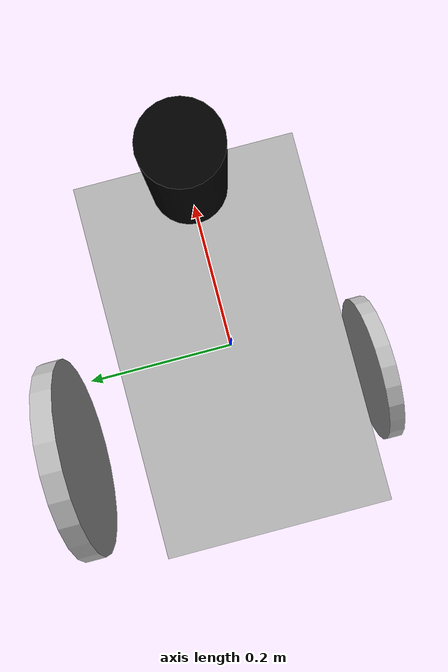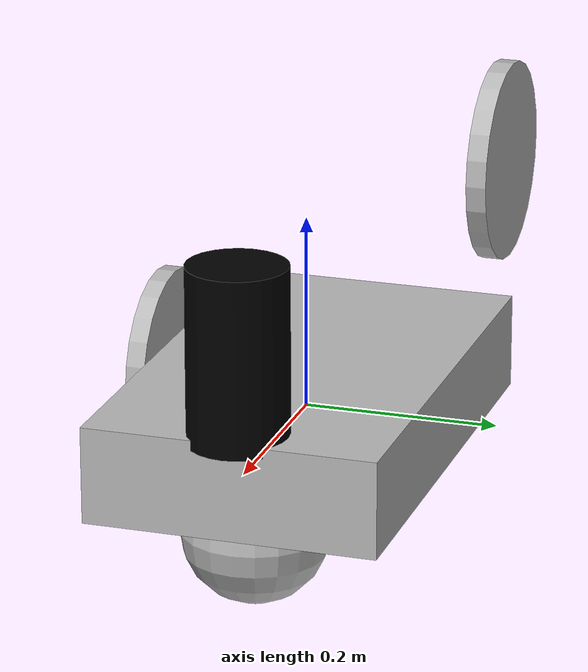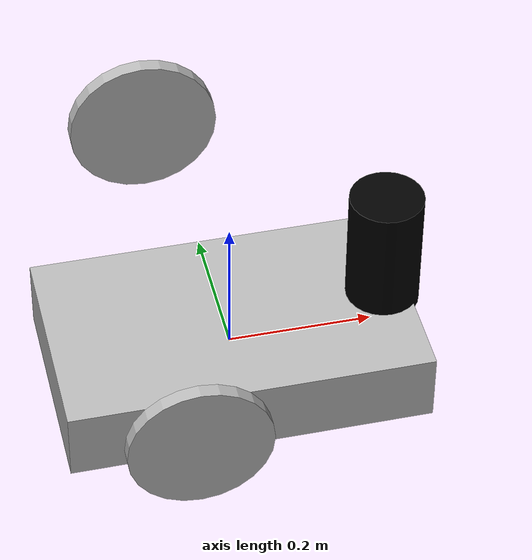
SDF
<?xml version='1.0'?>
<sdf version='1.4'>
  <model name="polybot">
  <static>false</static>

  <!-- *********************** MAIN BODY **************************  -->

  <link name='base_link'>
    <pose>0 0 0.0 0 0 0</pose>
    <collision name='base_link_collision'>
      <geometry>
        <box>
          <size>0.5 0.3 0.1</size>
        </box>
      </geometry>
    </collision>

    <visual name='base_link_visual'>
      <geometry>
        <box>
          <size>0.5 0.3 0.1</size>
        </box>
      </geometry>
    </visual>

    <!-- *********************** CASTER WHEEL **************************  -->

    <collision name='caster_collision'>
      <pose>0.165 0 -0.07 0 0 0</pose>
        <geometry>
          <sphere>
            <radius>0.075</radius>
          </sphere>
        </geometry>

        <surface>
          <friction>
            <ode>
              <mu>0</mu>
              <mu2>0</mu2>
              <slip1>1.0</slip1>
              <slip2>1.0</slip2>
            </ode>
          </friction>
        </surface>
      </collision>

      <visual name='caster_visual'>
        <pose>0.165 0 -0.07 0 0 0</pose>
        <geometry>
          <sphere>
            <radius>0.075</radius>
          </sphere>
        </geometry>
      </visual>

  </link>

  <!-- *********************** WHEEL LEFT **************************  -->

  <link name='wheel_left'>
    <pose>-0.08 -0.18 0 0 1.5707 1.5707</pose>
    <collision name='collision'>
      <geometry>
        <cylinder>
          <radius>0.1</radius>
          <length>0.02</length>
        </cylinder>
      </geometry>
    </collision>

    <visual name='visual'>
      <geometry>
        <cylinder>
          <radius>0.1</radius>
          <length>0.02</length>
        </cylinder>
      </geometry>
    </visual>
  </link>

  <!-- *********************** WHEEL RIGHT **************************  -->

  <link name='wheel_right'>
    <pose>-0.08 0.18 0.255 0 1.5707 1.5707</pose>
    <collision name='collision'>
      <geometry>
        <cylinder>
          <radius>0.1</radius>
          <length>0.02</length>
        </cylinder>
      </geometry>
    </collision>

    <visual name='visual'>
      <geometry>
        <cylinder>
          <radius>0.1</radius>
          <length>0.02</length>
        </cylinder>
      </geometry>
    </visual>
  </link>

  <!-- *********************** JOINT LEFT **************************  -->

  <joint type="revolute" name="left_wheel_hinge">
    <pose>0 0 0 0 0 0</pose>
    <child>wheel_left</child>
    <parent>base_link</parent>
    <axis>
      <xyz>0 1 0</xyz>
    </axis>
  </joint>

  <!-- *********************** JOINT RIGHT **************************  -->

  <joint type='revolute' name='right_wheel_hinge'>
    <pose>0 0 0 0 0 0</pose>
    <child>wheel_right</child>
    <parent>base_link</parent>
    <axis>
      <xyz>0 1 0</xyz>
    </axis>
  </joint>

  <!-- *********************** IMU SENSOR SETUP **************************  -->

  <link name="imu_link">
    <gravity>true</gravity>
    <sensor name="bmb_imu" type="imu">
      <always_on>true</always_on>
      <update_rate>100</update_rate>
      <visualize>true</visualize>
      <imu>
        <orientation>
          <x>
            <noise type="gaussian">
              <mean>0.0</mean>
              <stddev>2e-3</stddev>
            </noise>
          </x>
          <y>
            <noise type="gaussian">
              <mean>0.0</mean>
              <stddev>2e-3</stddev>
            </noise>
          </y>
          <z>
            <noise type="gaussian">
              <mean>0.0</mean>
              <stddev>2e-3</stddev>
            </noise>
          </z>
        </orientation>
        <angular_velocity>
          <x>
            <noise type="gaussian">
              <mean>0.0</mean>
              <stddev>2e-4</stddev>
            </noise>
          </x>
          <y>
            <noise type="gaussian">
              <mean>0.0</mean>
              <stddev>2e-4</stddev>
            </noise>
          </y>
          <z>
            <noise type="gaussian">
              <mean>0.0</mean>
              <stddev>2e-4</stddev>
            </noise>
          </z>
        </angular_velocity>
        <linear_acceleration>
          <x>
            <noise type="gaussian">
              <mean>0.0</mean>
              <stddev>1.7e-2</stddev>
            </noise>
          </x>
          <y>
            <noise type="gaussian">
              <mean>0.0</mean>
              <stddev>1.7e-2</stddev>
            </noise>
          </y>
          <z>
            <noise type="gaussian">
              <mean>0.0</mean>
              <stddev>1.7e-2</stddev>
            </noise>
          </z>
        </linear_acceleration>
      </imu>
      <plugin name="polybot_imu" filename="libgazebo_ros_imu_sensor.so">
        <initial_orientation_as_reference>false</initial_orientation_as_reference>
        <frame_name>imu_link</frame_name>
        <ros>
          <namespace>/imu</namespace>
          <remapping>~/out:=data</remapping>
        </ros>
      </plugin>
    </sensor>
  </link>

  <!-- *********************** GPS SETUP *********************************  -->

  <link name="gps_link">
    <sensor name="bmb_gps" type="gps">
      <always_on>true</always_on>
      <update_rate>10.0</update_rate>
      <gps>
        <position_sensing>
          <horizontal>
            <noise type="gaussian">
              <mean>0.0</mean>
              <stddev>1e-2</stddev>
            </noise>
          </horizontal>
          <vertical>
            <noise type="gaussian">
              <mean>0.0</mean>
              <stddev>1</stddev>
            </noise>
          </vertical>
        </position_sensing>
      </gps>
      <plugin name="polybot_gps" filename="libgazebo_ros_gps_sensor.so">
        <ros>
          <remapping>~/out:=gps/fix</remapping>
        </ros>
      </plugin>
    </sensor>
  </link>

  <!-- *********************** LIDAR SETUP *********************************  -->

  <link name="lidar_link">
  <inertial>
    <pose>0.215 0 0.13 0 0 0</pose>
    <inertia>
      <ixx>0.001</ixx>
      <ixy>0.000</ixy>
      <ixz>0.000</ixz>
      <iyy>0.001</iyy>
      <iyz>0.000</iyz>
      <izz>0.001</izz>
    </inertia>
    <mass>0.114</mass>
  </inertial>

  <collision name="lidar_collision">
    <pose>0.215 0 0.13 0 0 0</pose>
    <geometry>
      <cylinder>
        <radius>0.0508</radius>
        <length>0.18</length>
      </cylinder>
    </geometry>
  </collision>

  <visual name="lidar_visual">
    <pose>0.215 0 0.13 0 0 0</pose>
    <geometry>
      <cylinder>
        <radius>0.0508</radius>
        <length>0.18</length>
      </cylinder>
    </geometry>
    <material>
      <ambient>0.0 0.0 0.0 1.0</ambient>
      <diffuse>0.0 0.0 0.0 1.0</diffuse>
      <specular>0.0 0.0 0.0 1.0</specular>
      <emissive>0.0 0.0 0.0 1.0</emissive>
    </material>
  </visual>

  <sensor name="lidar" type="ray">
    <pose>0.215 0 0.215 0 0 0</pose>
    <always_on>true</always_on>
    <visualize>true</visualize>
    <update_rate>5</update_rate>
    <ray>
      <scan>
        <horizontal>
          <samples>360</samples>
          <resolution>1.00000</resolution>
          <min_angle>0.000000</min_angle>
          <max_angle>6.280000</max_angle>
        </horizontal>
      </scan>
      <range>
        <min>0.120000</min>
        <max>3.5</max>
        <resolution>0.015000</resolution>
      </range>
      <noise>
        <type>gaussian</type>
        <mean>0.0</mean>
        <stddev>0.01</stddev>
      </noise>
    </ray>
    <plugin name="scan" filename="libgazebo_ros_ray_sensor.so">
      <ros>
        <remapping>~/out:=scan</remapping>
      </ros>
      <output_type>sensor_msgs/LaserScan</output_type>
      <frame_name>lidar_link</frame_name>
    </plugin>
  </sensor>
  </link>

  <!-- *********************** WHEEL ODOMETRY ***************************    -->

  <plugin name="polybot_diff_drive" filename="libgazebo_ros_diff_drive.so">

    <update_rate>30</update_rate>

    <!-- wheels -->
    <left_joint>left_wheel_hinge</left_joint>
    <right_joint>right_wheel_hinge</right_joint>

    <!-- kinematics -->
    <wheel_separation>0.52</wheel_separation>
    <wheel_diameter>0.28</wheel_diameter>

    <!-- limits -->
    <max_wheel_torque>20</max_wheel_torque>
    <max_wheel_acceleration>1.0</max_wheel_acceleration>

    <!-- Receive velocity commands on this ROS topic -->
    <command_topic>cmd_vel</command_topic>

    <!-- output -->
    <!-- When false, publish no wheel odometry data to a ROS topic -->
    <publish_odom>true</publish_odom>

    <!-- When true, publish coordinate transform from odom to base_footprint -->
    <!-- I usually use the robot_localization package to publish this transform -->
    <publish_odom_tf>false</publish_odom_tf>

    <!-- When true, publish coordinate transform from base_link to the wheels -->
    <!-- The robot_state_publisher package is often used to publish this transform -->
    <publish_wheel_tf>false</publish_wheel_tf>

    <odometry_topic>odom</odometry_topic>
    <odometry_frame>odom</odometry_frame>
    <robot_base_frame>base_footprint</robot_base_frame>

    <!-- Odometry source, 0 for ENCODER, 1 for WORLD, defaults to WORLD -->
    <odometry_source>0</odometry_source>

    <!-- Change the ROS topic we will publish the odometry data to -->
    <ros>
      <remapping>odom:=wheel/odometry</remapping>
    </ros>

  </plugin>

  <!-- *********************** JOINT STATE PUBLISHER *********************   -->

  <plugin name="polybot_joint_state" filename="libgazebo_ros_joint_state_publisher.so">
    <ros>
      <remapping>~/out:=joint_states</remapping>
    </ros>
    <update_rate>30</update_rate>
    <joint_name>left_wheel_hinge</joint_name>
    <joint_name>right_wheel_hinge</joint_name>
  </plugin>
  </model>
</sdf>
